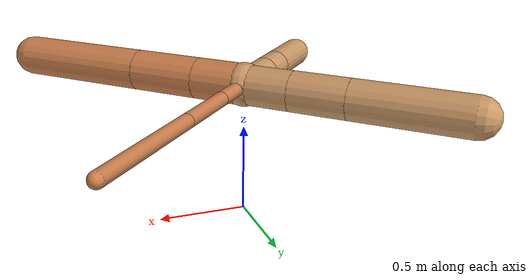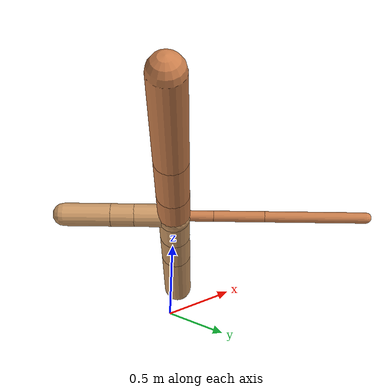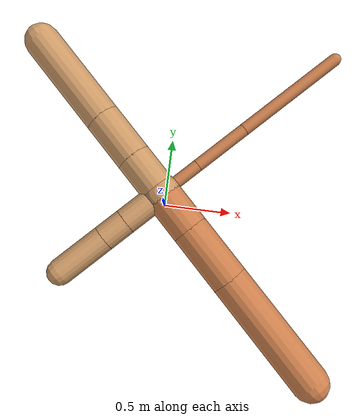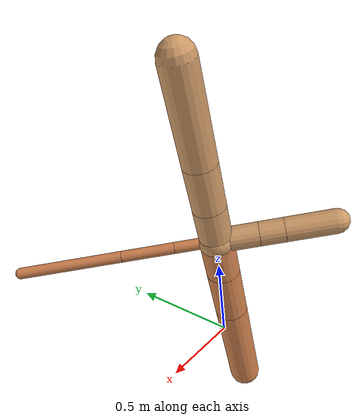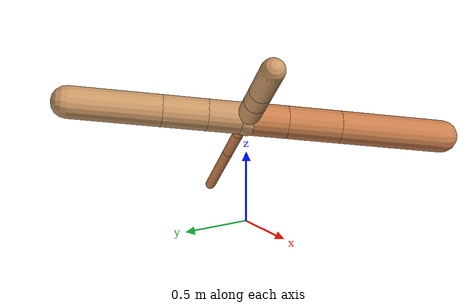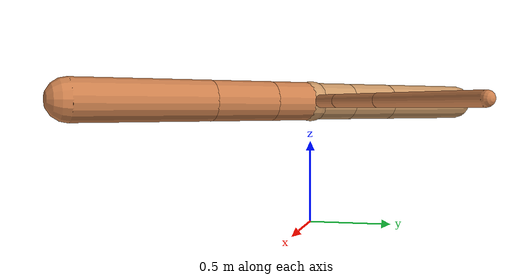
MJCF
<?xml version="1.0" ?>
<mujoco model="ant">

	<compiler angle="degree" coordinate="local" inertiafromgeom="true"/>

	<option integrator="RK4" timestep="0.01"/>

	<custom>

		<numeric data="0.0 0.0 0.55 1.0 0.0 0.0 0.0 0.0 1.0 0.0 -1.0 0.0 -1.0 0.0 1.0" name="init_qpos"/>

	</custom>

	<default>

		<joint armature="1" damping="1" limited="true"/>

		<geom conaffinity="0" condim="3" density="5.0" friction="1.5 0.1 0.1" margin="0.01" rgba="0.8 0.6 0.4 1"/>

	</default>

	<worldbody>

		<body name="torso" pos="0 0 0.75">

			<geom name="torso_geom" pos="0 0 0" size="0.12239137475521208" type="sphere"/>

			<!--joint armature="0" damping="0" limited="false" margin="0.01" name="root" pos="0 0 0" type="free"/-->

			<body name="front_left_leg" pos="0 0 0">

				<geom fromto="0 0 0 0.2 0.2 0" name="aux_1_geom" size="0.039529708902972534" type="capsule" rgba=".8 .5 .3 1"/>

				<body name="aux_1" pos="0.2 0.2 0">

					<joint axis="0 0 1" name="hip_1" pos="0.0 0.0 0.0" range="-40 40" type="hinge"/>

					<geom fromto="0 0 0 0.260582429943433 0.260582429943433 0" name="left_leg_geom" size="0.039529708902972534" type="capsule" rgba=".8 .5 .3 1"/>

					<body pos="0.260582429943433 0.260582429943433 0" name="front_left_foot">

						<joint axis="-1 1 0" name="ankle_1" pos="0.0 0.0 0.0" range="30 100" type="hinge"/>

						<geom fromto="0 0 0 0.521164859886866 0.521164859886866 0" name="left_ankle_geom" size="0.039529708902972534" type="capsule" rgba=".8 .5 .3 1"/>

					</body>

				</body>

			</body>

			<body name="front_right_leg" pos="0 0 0">

				<geom fromto="0 0 0 -0.2 0.2 0" name="aux_2_geom" size="0.11288608062758057" type="capsule"/>

				<body name="aux_2" pos="-0.2 0.2 0">

					<joint axis="0 0 1" name="hip_2" pos="0.0 0.0 0.0" range="-40 40" type="hinge"/>

					<geom fromto="0 0 0 -0.22526842630108815 0.22526842630108815 0" name="right_leg_geom" size="0.11288608062758057" type="capsule"/>

					<body pos="-0.22526842630108815 0.22526842630108815 0" name="front_right_foot">

						<joint axis="1 1 0" name="ankle_2" pos="0.0 0.0 0.0" range="-100 -30" type="hinge"/>

						<geom fromto="0 0 0 -0.4505368526021763 0.4505368526021763 0" name="right_ankle_geom" size="0.11288608062758057" type="capsule"/>

					</body>

				</body>

			</body>

			<body name="left_back_leg" pos="0 0 0">

				<geom fromto="0 0 0 -0.2 -0.2 0" name="aux_3_geom" size="0.083246565747099" type="capsule"/>

				<body name="aux_3" pos="-0.2 -0.2 0">

					<joint axis="0 0 1" name="hip_3" pos="0.0 0.0 0.0" range="-40 40" type="hinge"/>

					<geom fromto="0 0 0 -0.11794026211646202 -0.11794026211646202 0" name="back_leg_geom" size="0.083246565747099" type="capsule"/>

					<body pos="-0.11794026211646202 -0.11794026211646202 0" name="left_back_foot">

						<joint axis="-1 1 0" name="ankle_3" pos="0.0 0.0 0.0" range="-100 -30" type="hinge"/>

						<geom fromto="0 0 0 -0.23588052423292405 -0.23588052423292405 0" name="third_ankle_geom" size="0.083246565747099" type="capsule"/>

					</body>

				</body>

			</body>

			<body name="right_back_leg" pos="0 0 0">

				<geom fromto="0 0 0 0.2 -0.2 0" name="aux_4_geom" size="0.11696234730174818" type="capsule" rgba=".8 .5 .3 1"/>

				<body name="aux_4" pos="0.2 -0.2 0">

					<joint axis="0 0 1" name="hip_4" pos="0.0 0.0 0.0" range="-40 40" type="hinge"/>

					<geom fromto="0 0 0 0.27444931423144503 -0.27444931423144503 0" name="rightback_leg_geom" size="0.11696234730174818" type="capsule" rgba=".8 .5 .3 1"/>

					<body pos="0.27444931423144503 -0.27444931423144503 0" name="right_back_foot">

						<joint axis="1 1 0" name="ankle_4" pos="0.0 0.0 0.0" range="30 100" type="hinge"/>

						<geom fromto="0 0 0 0.5488986284628901 -0.5488986284628901 0" name="fourth_ankle_geom" size="0.11696234730174818" type="capsule" rgba=".8 .5 .3 1"/>

					</body>

				</body>

			</body>

		</body>

	</worldbody>

	<actuator>

		<motor ctrllimited="true" ctrlrange="-1.0 1.0" joint="hip_4" gear="150"/>

		<motor ctrllimited="true" ctrlrange="-1.0 1.0" joint="ankle_4" gear="150"/>

		<motor ctrllimited="true" ctrlrange="-1.0 1.0" joint="hip_1" gear="150"/>

		<motor ctrllimited="true" ctrlrange="-1.0 1.0" joint="ankle_1" gear="150"/>

		<motor ctrllimited="true" ctrlrange="-1.0 1.0" joint="hip_2" gear="150"/>

		<motor ctrllimited="true" ctrlrange="-1.0 1.0" joint="ankle_2" gear="150"/>

		<motor ctrllimited="true" ctrlrange="-1.0 1.0" joint="hip_3" gear="150"/>

		<motor ctrllimited="true" ctrlrange="-1.0 1.0" joint="ankle_3" gear="150"/>

	</actuator>

</mujoco>
